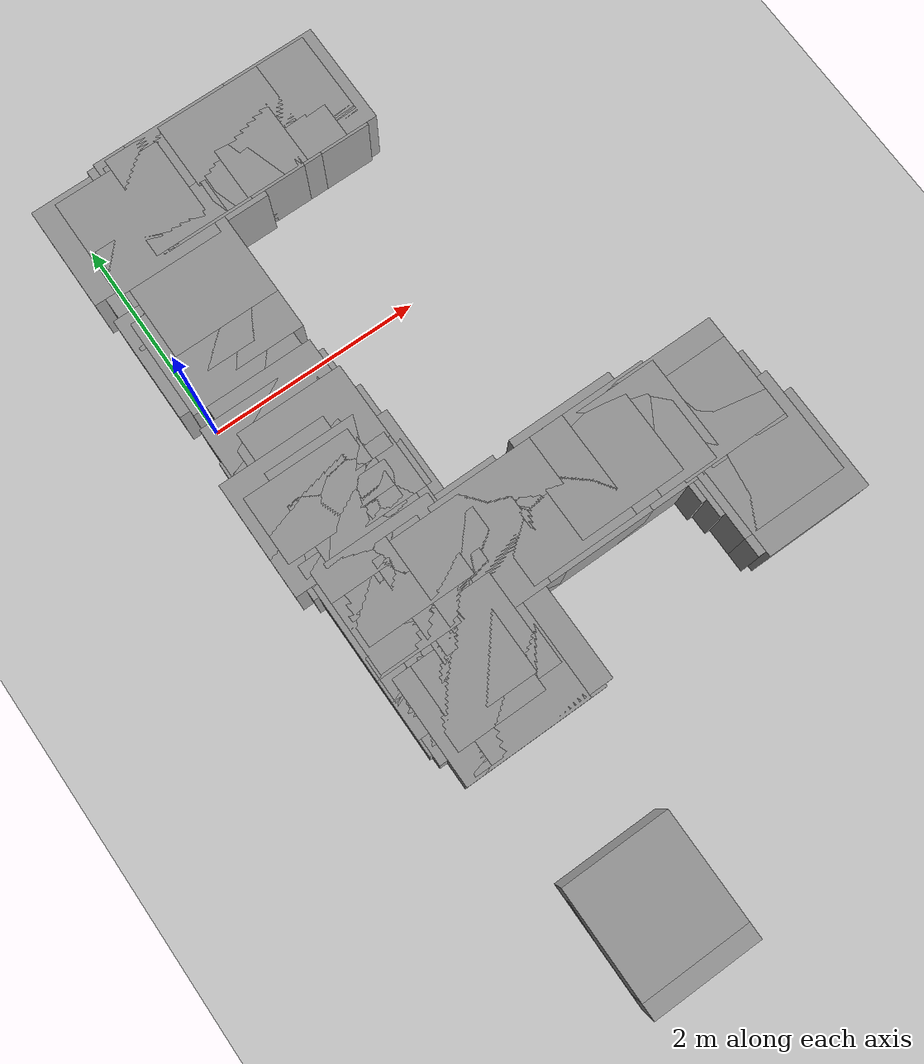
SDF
<sdf version="1.7">
 <world name="default">
  <model name="ground_plane">
   <static>1</static>
   <link name="link">
    <collision name="collision">
     <geometry><plane><normal>0 0 1</normal><size>100 100</size></plane></geometry>
     <surface>
      <contact><collide_bitmask>65535</collide_bitmask></contact>
      <friction><ode><mu>100</mu><mu2>50</mu2></ode></friction>
     </surface>
    </collision>
    <visual name="visual">
     <cast_shadows>0</cast_shadows>
     <geometry><plane><normal>0 0 1</normal><size>100 100</size></plane></geometry>
     <material>
      <script><uri>file://media/materials/scripts/gazebo.material</uri><name>Gazebo/Grey</name></script>
     </material>
    </visual>
   </link>
  </model>
  <include>
   <uri>model://unit_box</uri>
   <name>map_box_177</name>
   <pose>0.35719 1.22254 0.15000 0.00000 0.00000 0.00000</pose>
   <scale>0.05000 1.55000 0.30000</scale>
  </include>
  <include>
   <uri>model://unit_box</uri>
   <name>map_box_178</name>
   <pose>0.45719 1.72254 0.15000 0.00000 0.00000 0.00000</pose>
   <scale>0.05000 0.55000 0.30000</scale>
  </include>
  <include>
   <uri>model://unit_box</uri>
   <name>map_box_181</name>
   <pose>0.50719 1.17254 0.15000 0.00000 0.00000 0.00000</pose>
   <scale>0.05000 1.55000 0.30000</scale>
  </include>
  <include>
   <uri>model://unit_box</uri>
   <name>map_box_183</name>
   <pose>0.90719 1.84754 0.15000 0.00000 0.00000 0.00000</pose>
   <scale>0.05000 0.10000 0.30000</scale>
  </include>
  <include>
   <uri>model://unit_box</uri>
   <name>map_box_184</name>
   <pose>1.20719 1.84754 0.15000 0.00000 0.00000 0.00000</pose>
   <scale>0.25000 0.10000 0.30000</scale>
  </include>
  <include>
   <uri>model://unit_box</uri>
   <name>map_box_185</name>
   <pose>1.40719 1.84754 0.15000 0.00000 0.00000 0.00000</pose>
   <scale>0.05000 0.10000 0.30000</scale>
  </include>
  <include>
   <uri>model://unit_box</uri>
   <name>map_box_186</name>
   <pose>1.80719 1.84754 0.15000 0.00000 0.00000 0.00000</pose>
   <scale>0.35000 0.10000 0.30000</scale>
  </include>
  <include>
   <uri>model://unit_box</uri>
   <name>map_box_187</name>
   <pose>2.10719 1.84754 0.15000 0.00000 0.00000 0.00000</pose>
   <scale>0.15000 0.10000 0.30000</scale>
  </include>
  <include>
   <uri>model://unit_box</uri>
   <name>map_box_189</name>
   <pose>0.83219 1.82254 0.15000 0.00000 0.00000 0.00000</pose>
   <scale>0.10000 0.05000 0.30000</scale>
  </include>
  <include>
   <uri>model://unit_box</uri>
   <name>map_box_190</name>
   <pose>1.00719 1.82254 0.15000 0.00000 0.00000 0.00000</pose>
   <scale>0.15000 0.05000 0.30000</scale>
  </include>
  <include>
   <uri>model://unit_box</uri>
   <name>map_box_191</name>
   <pose>1.35719 1.82254 0.15000 0.00000 0.00000 0.00000</pose>
   <scale>0.05000 0.05000 0.30000</scale>
  </include>
  <include>
   <uri>model://unit_box</uri>
   <name>map_box_192</name>
   <pose>1.53219 1.82254 0.15000 0.00000 0.00000 0.00000</pose>
   <scale>0.20000 0.05000 0.30000</scale>
  </include>
  <include>
   <uri>model://unit_box</uri>
   <name>map_box_193</name>
   <pose>2.00719 1.82254 0.15000 0.00000 0.00000 0.00000</pose>
   <scale>0.05000 0.05000 0.30000</scale>
  </include>
  <include>
   <uri>model://unit_box</uri>
   <name>map_box_195</name>
   <pose>0.25719 1.77254 0.15000 0.00000 0.00000 0.00000</pose>
   <scale>0.05000 0.05000 0.30000</scale>
  </include>
  <include>
   <uri>model://unit_box</uri>
   <name>map_box_196</name>
   <pose>0.95719 1.77254 0.15000 0.00000 0.00000 0.00000</pose>
   <scale>0.05000 0.05000 0.30000</scale>
  </include>
  <include>
   <uri>model://unit_box</uri>
   <name>map_box_207</name>
   <pose>0.55719 1.02254 0.15000 0.00000 0.00000 0.00000</pose>
   <scale>0.05000 0.15000 0.30000</scale>
  </include>
  <include>
   <uri>model://unit_box</uri>
   <name>map_box_208</name>
   <pose>0.55719 0.77254 0.15000 0.00000 0.00000 0.00000</pose>
   <scale>0.05000 0.05000 0.30000</scale>
  </include>
  <include>
   <uri>model://unit_box</uri>
   <name>map_box_210</name>
   <pose>0.55719 0.64754 0.15000 0.00000 0.00000 0.00000</pose>
   <scale>0.05000 0.10000 0.30000</scale>
  </include>
  <include>
   <uri>model://unit_box</uri>
   <name>map_box_212</name>
   <pose>0.30719 0.57254 0.15000 0.00000 0.00000 0.00000</pose>
   <scale>0.05000 0.05000 0.30000</scale>
  </include>
  <include>
   <uri>model://unit_box</uri>
   <name>map_box_213</name>
   <pose>0.45719 0.52254 0.15000 0.00000 0.00000 0.00000</pose>
   <scale>0.05000 0.15000 0.30000</scale>
  </include>
  <include>
   <uri>model://unit_box</uri>
   <name>map_box_214</name>
   <pose>0.40719 0.52254 0.15000 0.00000 0.00000 0.00000</pose>
   <scale>0.05000 0.05000 0.30000</scale>
  </include>
  <include>
   <uri>model://unit_box</uri>
   <name>map_box_220</name>
   <pose>0.53219 -0.47746 0.15000 0.00000 0.00000 0.00000</pose>
   <scale>0.20000 0.05000 0.30000</scale>
  </include>
  <include>
   <uri>model://unit_box</uri>
   <name>map_box_221</name>
   <pose>0.58219 -0.60246 0.15000 0.00000 0.00000 0.00000</pose>
   <scale>0.10000 0.20000 0.30000</scale>
  </include>
  <include>
   <uri>model://unit_box</uri>
   <name>map_box_222</name>
   <pose>0.38219 -0.60246 0.15000 0.00000 0.00000 0.00000</pose>
   <scale>0.10000 0.10000 0.30000</scale>
  </include>
  <include>
   <uri>model://unit_box</uri>
   <name>map_box_223</name>
   <pose>0.65719 -1.02746 0.15000 0.00000 0.00000 0.00000</pose>
   <scale>0.05000 0.95000 0.30000</scale>
  </include>
  <include>
   <uri>model://unit_box</uri>
   <name>map_box_224</name>
   <pose>0.35719 -0.92746 0.15000 0.00000 0.00000 0.00000</pose>
   <scale>0.05000 0.55000 0.30000</scale>
  </include>
  <include>
   <uri>model://unit_box</uri>
   <name>map_box_225</name>
   <pose>0.60719 -0.80246 0.15000 0.00000 0.00000 0.00000</pose>
   <scale>0.05000 0.20000 0.30000</scale>
  </include>
  <include>
   <uri>model://unit_box</uri>
   <name>map_box_226</name>
   <pose>0.40719 -0.77746 0.15000 0.00000 0.00000 0.00000</pose>
   <scale>0.05000 0.05000 0.30000</scale>
  </include>
  <include>
   <uri>model://unit_box</uri>
   <name>map_box_227</name>
   <pose>0.40719 -0.87746 0.15000 0.00000 0.00000 0.00000</pose>
   <scale>0.05000 0.05000 0.30000</scale>
  </include>
  <include>
   <uri>model://unit_box</uri>
   <name>map_box_228</name>
   <pose>0.60719 -1.02746 0.15000 0.00000 0.00000 0.00000</pose>
   <scale>0.05000 0.15000 0.30000</scale>
  </include>
  <include>
   <uri>model://unit_box</uri>
   <name>map_box_229</name>
   <pose>0.25719 -1.07746 0.15000 0.00000 0.00000 0.00000</pose>
   <scale>0.05000 0.05000 0.30000</scale>
  </include>
  <include>
   <uri>model://unit_box</uri>
   <name>map_box_230</name>
   <pose>0.43219 -1.07746 0.15000 0.00000 0.00000 0.00000</pose>
   <scale>0.10000 0.05000 0.30000</scale>
  </include>
  <include>
   <uri>model://unit_box</uri>
   <name>map_box_232</name>
   <pose>0.40719 -1.37746 0.15000 0.00000 0.00000 0.00000</pose>
   <scale>0.05000 0.55000 0.30000</scale>
  </include>
  <include>
   <uri>model://unit_box</uri>
   <name>map_box_235</name>
   <pose>0.25719 -1.17746 0.15000 0.00000 0.00000 0.00000</pose>
   <scale>0.05000 0.05000 0.30000</scale>
  </include>
  <include>
   <uri>model://unit_box</uri>
   <name>map_box_236</name>
   <pose>0.60719 -1.20246 0.15000 0.00000 0.00000 0.00000</pose>
   <scale>0.05000 0.10000 0.30000</scale>
  </include>
  <include>
   <uri>model://unit_box</uri>
   <name>map_box_237</name>
   <pose>0.70719 -1.32746 0.15000 0.00000 0.00000 0.00000</pose>
   <scale>0.05000 0.25000 0.30000</scale>
  </include>
  <include>
   <uri>model://unit_box</uri>
   <name>map_box_238</name>
   <pose>0.35719 -1.27746 0.15000 0.00000 0.00000 0.00000</pose>
   <scale>0.05000 0.05000 0.30000</scale>
  </include>
  <include>
   <uri>model://unit_box</uri>
   <name>map_box_239</name>
   <pose>0.60719 -1.32746 0.15000 0.00000 0.00000 0.00000</pose>
   <scale>0.05000 0.05000 0.30000</scale>
  </include>
  <include>
   <uri>model://unit_box</uri>
   <name>map_box_240</name>
   <pose>0.45719 -1.37746 0.15000 0.00000 0.00000 0.00000</pose>
   <scale>0.05000 0.05000 0.30000</scale>
  </include>
  <include>
   <uri>model://unit_box</uri>
   <name>map_box_241</name>
   <pose>0.58219 -2.07746 0.15000 0.00000 0.00000 0.00000</pose>
   <scale>0.10000 1.35000 0.30000</scale>
  </include>
  <include>
   <uri>model://unit_box</uri>
   <name>map_box_242</name>
   <pose>0.45719 -1.65246 0.15000 0.00000 0.00000 0.00000</pose>
   <scale>0.05000 0.10000 0.30000</scale>
  </include>
  <include>
   <uri>model://unit_box</uri>
   <name>map_box_243</name>
   <pose>0.40719 -1.75246 0.15000 0.00000 0.00000 0.00000</pose>
   <scale>0.05000 0.10000 0.30000</scale>
  </include>
  <include>
   <uri>model://unit_box</uri>
   <name>map_box_244</name>
   <pose>0.50719 -1.72746 0.15000 0.00000 0.00000 0.00000</pose>
   <scale>0.05000 0.05000 0.30000</scale>
  </include>
  <include>
   <uri>model://unit_box</uri>
   <name>map_box_246</name>
   <pose>0.50719 -1.82746 0.15000 0.00000 0.00000 0.00000</pose>
   <scale>0.05000 0.05000 0.30000</scale>
  </include>
  <include>
   <uri>model://unit_box</uri>
   <name>map_box_247</name>
   <pose>0.40719 -1.87746 0.15000 0.00000 0.00000 0.00000</pose>
   <scale>0.05000 0.05000 0.30000</scale>
  </include>
  <include>
   <uri>model://unit_box</uri>
   <name>map_box_248</name>
   <pose>0.40719 -1.97746 0.15000 0.00000 0.00000 0.00000</pose>
   <scale>0.05000 0.05000 0.30000</scale>
  </include>
  <include>
   <uri>model://unit_box</uri>
   <name>map_box_251</name>
   <pose>0.45719 -2.05246 0.15000 0.00000 0.00000 0.00000</pose>
   <scale>0.05000 0.10000 0.30000</scale>
  </include>
  <include>
   <uri>model://unit_box</uri>
   <name>map_box_252</name>
   <pose>0.40719 -2.07746 0.15000 0.00000 0.00000 0.00000</pose>
   <scale>0.05000 0.05000 0.30000</scale>
  </include>
  <include>
   <uri>model://unit_box</uri>
   <name>map_box_253</name>
   <pose>2.35719 -2.10246 0.15000 0.00000 0.00000 0.00000</pose>
   <scale>1.95000 0.10000 0.30000</scale>
  </include>
  <include>
   <uri>model://unit_box</uri>
   <name>map_box_254</name>
   <pose>1.18219 -2.12746 0.15000 0.00000 0.00000 0.00000</pose>
   <scale>0.40000 0.05000 0.30000</scale>
  </include>
  <include>
   <uri>model://unit_box</uri>
   <name>map_box_255</name>
   <pose>3.35719 -2.57746 0.15000 0.00000 0.00000 0.00000</pose>
   <scale>0.05000 0.95000 0.30000</scale>
  </include>
  <include>
   <uri>model://unit_box</uri>
   <name>map_box_257</name>
   <pose>0.40719 -2.17746 0.15000 0.00000 0.00000 0.00000</pose>
   <scale>0.05000 0.05000 0.30000</scale>
  </include>
  <include>
   <uri>model://unit_box</uri>
   <name>map_box_258</name>
   <pose>1.10719 -2.17746 0.15000 0.00000 0.00000 0.00000</pose>
   <scale>0.35000 0.05000 0.30000</scale>
  </include>
  <include>
   <uri>model://unit_box</uri>
   <name>map_box_259</name>
   <pose>1.35719 -2.17746 0.15000 0.00000 0.00000 0.00000</pose>
   <scale>0.05000 0.05000 0.30000</scale>
  </include>
  <include>
   <uri>model://unit_box</uri>
   <name>map_box_260</name>
   <pose>1.50719 -2.17746 0.15000 0.00000 0.00000 0.00000</pose>
   <scale>0.05000 0.05000 0.30000</scale>
  </include>
  <include>
   <uri>model://unit_box</uri>
   <name>map_box_261</name>
   <pose>1.83219 -2.17746 0.15000 0.00000 0.00000 0.00000</pose>
   <scale>0.20000 0.05000 0.30000</scale>
  </include>
  <include>
   <uri>model://unit_box</uri>
   <name>map_box_262</name>
   <pose>2.08219 -2.17746 0.15000 0.00000 0.00000 0.00000</pose>
   <scale>0.20000 0.05000 0.30000</scale>
  </include>
  <include>
   <uri>model://unit_box</uri>
   <name>map_box_263</name>
   <pose>2.63219 -2.17746 0.15000 0.00000 0.00000 0.00000</pose>
   <scale>0.20000 0.05000 0.30000</scale>
  </include>
  <include>
   <uri>model://unit_box</uri>
   <name>map_box_264</name>
   <pose>3.30719 -2.20246 0.15000 0.00000 0.00000 0.00000</pose>
   <scale>0.05000 0.10000 0.30000</scale>
  </include>
  <include>
   <uri>model://unit_box</uri>
   <name>map_box_265</name>
   <pose>0.48219 -2.22746 0.15000 0.00000 0.00000 0.00000</pose>
   <scale>0.10000 0.05000 0.30000</scale>
  </include>
  <include>
   <uri>model://unit_box</uri>
   <name>map_box_266</name>
   <pose>0.95719 -2.22746 0.15000 0.00000 0.00000 0.00000</pose>
   <scale>0.05000 0.05000 0.30000</scale>
  </include>
  <include>
   <uri>model://unit_box</uri>
   <name>map_box_267</name>
   <pose>1.10719 -2.22746 0.15000 0.00000 0.00000 0.00000</pose>
   <scale>0.05000 0.05000 0.30000</scale>
  </include>
  <include>
   <uri>model://unit_box</uri>
   <name>map_box_268</name>
   <pose>1.95719 -2.22746 0.15000 0.00000 0.00000 0.00000</pose>
   <scale>0.15000 0.05000 0.30000</scale>
  </include>
  <include>
   <uri>model://unit_box</uri>
   <name>map_box_269</name>
   <pose>2.70719 -2.22746 0.15000 0.00000 0.00000 0.00000</pose>
   <scale>0.15000 0.05000 0.30000</scale>
  </include>
  <include>
   <uri>model://unit_box</uri>
   <name>map_box_272</name>
   <pose>0.40719 -2.27746 0.15000 0.00000 0.00000 0.00000</pose>
   <scale>0.05000 0.05000 0.30000</scale>
  </include>
  <include>
   <uri>model://unit_box</uri>
   <name>map_box_273</name>
   <pose>0.50719 -2.27746 0.15000 0.00000 0.00000 0.00000</pose>
   <scale>0.05000 0.05000 0.30000</scale>
  </include>
  <include>
   <uri>model://unit_box</uri>
   <name>map_box_274</name>
   <pose>0.90719 -2.27746 0.15000 0.00000 0.00000 0.00000</pose>
   <scale>0.05000 0.05000 0.30000</scale>
  </include>
  <include>
   <uri>model://unit_box</uri>
   <name>map_box_277</name>
   <pose>0.85719 -2.32746 0.15000 0.00000 0.00000 0.00000</pose>
   <scale>0.05000 0.05000 0.30000</scale>
  </include>
  <include>
   <uri>model://unit_box</uri>
   <name>map_box_278</name>
   <pose>3.30719 -2.40246 0.15000 0.00000 0.00000 0.00000</pose>
   <scale>0.05000 0.20000 0.30000</scale>
  </include>
  <include>
   <uri>model://unit_box</uri>
   <name>map_box_283</name>
   <pose>0.43219 -2.37746 0.15000 0.00000 0.00000 0.00000</pose>
   <scale>0.10000 0.05000 0.30000</scale>
  </include>
  <include>
   <uri>model://unit_box</uri>
   <name>map_box_284</name>
   <pose>0.80719 -2.37746 0.15000 0.00000 0.00000 0.00000</pose>
   <scale>0.05000 0.05000 0.30000</scale>
  </include>
  <include>
   <uri>model://unit_box</uri>
   <name>map_box_288</name>
   <pose>0.48219 -2.42746 0.15000 0.00000 0.00000 0.00000</pose>
   <scale>0.10000 0.05000 0.30000</scale>
  </include>
  <include>
   <uri>model://unit_box</uri>
   <name>map_box_290</name>
   <pose>0.40719 -2.47746 0.15000 0.00000 0.00000 0.00000</pose>
   <scale>0.05000 0.05000 0.30000</scale>
  </include>
  <include>
   <uri>model://unit_box</uri>
   <name>map_box_297</name>
   <pose>0.40719 -2.62746 0.15000 0.00000 0.00000 0.00000</pose>
   <scale>0.05000 0.05000 0.30000</scale>
  </include>
  <include>
   <uri>model://unit_box</uri>
   <name>map_box_298</name>
   <pose>0.65719 -2.67746 0.15000 0.00000 0.00000 0.00000</pose>
   <scale>0.05000 0.05000 0.30000</scale>
  </include>
  <include>
   <uri>model://unit_box</uri>
   <name>map_box_301</name>
   <pose>0.45719 -2.72746 0.15000 0.00000 0.00000 0.00000</pose>
   <scale>0.05000 0.05000 0.30000</scale>
  </include>
  <include>
   <uri>model://unit_box</uri>
   <name>map_box_304</name>
   <pose>0.40719 -2.77746 0.15000 0.00000 0.00000 0.00000</pose>
   <scale>0.05000 0.05000 0.30000</scale>
  </include>
  <include>
   <uri>model://unit_box</uri>
   <name>map_box_305</name>
   <pose>0.55719 -2.95246 0.15000 0.00000 0.00000 0.00000</pose>
   <scale>0.05000 0.40000 0.30000</scale>
  </include>
  <include>
   <uri>model://unit_box</uri>
   <name>map_box_306</name>
   <pose>0.65719 -2.77746 0.15000 0.00000 0.00000 0.00000</pose>
   <scale>0.05000 0.05000 0.30000</scale>
  </include>
  <include>
   <uri>model://unit_box</uri>
   <name>map_box_308</name>
   <pose>3.40719 -2.82746 0.15000 0.00000 0.00000 0.00000</pose>
   <scale>0.05000 0.05000 0.30000</scale>
  </include>
  <include>
   <uri>model://unit_box</uri>
   <name>map_box_311</name>
   <pose>0.43219 -2.87746 0.15000 0.00000 0.00000 0.00000</pose>
   <scale>0.10000 0.05000 0.30000</scale>
  </include>
  <include>
   <uri>model://unit_box</uri>
   <name>map_box_312</name>
   <pose>0.60719 -2.87746 0.15000 0.00000 0.00000 0.00000</pose>
   <scale>0.05000 0.05000 0.30000</scale>
  </include>
  <include>
   <uri>model://unit_box</uri>
   <name>map_box_316</name>
   <pose>3.40719 -3.00246 0.15000 0.00000 0.00000 0.00000</pose>
   <scale>0.05000 0.20000 0.30000</scale>
  </include>
  <include>
   <uri>model://unit_box</uri>
   <name>map_box_334</name>
   <pose>3.48219 -3.05246 0.15000 0.00000 0.00000 0.00000</pose>
   <scale>0.10000 0.10000 0.30000</scale>
  </include>
  <include>
   <uri>model://unit_box</uri>
   <name>map_box_341</name>
   <pose>0.60719 -3.10246 0.15000 0.00000 0.00000 0.00000</pose>
   <scale>0.05000 0.10000 0.30000</scale>
  </include>
  <include>
   <uri>model://unit_box</uri>
   <name>map_box_342</name>
   <pose>0.75719 -3.10246 0.15000 0.00000 0.00000 0.00000</pose>
   <scale>0.05000 0.10000 0.30000</scale>
  </include>
  <include>
   <uri>model://unit_box</uri>
   <name>map_box_343</name>
   <pose>0.90719 -3.10246 0.15000 0.00000 0.00000 0.00000</pose>
   <scale>0.05000 0.10000 0.30000</scale>
  </include>
  <include>
   <uri>model://unit_box</uri>
   <name>map_box_346</name>
   <pose>0.50719 -3.12746 0.15000 0.00000 0.00000 0.00000</pose>
   <scale>0.05000 0.05000 0.30000</scale>
  </include>
  <include>
   <uri>model://unit_box</uri>
   <name>map_box_347</name>
   <pose>0.68219 -3.12746 0.15000 0.00000 0.00000 0.00000</pose>
   <scale>0.10000 0.05000 0.30000</scale>
  </include>
  <include>
   <uri>model://unit_box</uri>
   <name>map_box_348</name>
   <pose>0.83219 -3.12746 0.15000 0.00000 0.00000 0.00000</pose>
   <scale>0.10000 0.05000 0.30000</scale>
  </include>
  <include>
   <uri>model://unit_box</uri>
   <name>map_box_349</name>
   <pose>0.65719 -5.12746 0.15000 0.00000 0.00000 0.00000</pose>
   <scale>0.05000 0.05000 0.30000</scale>
  </include>
  <include>
   <uri>model://unit_box</uri>
   <name>map_box_350</name>
   <pose>0.65719 -5.27746 0.15000 0.00000 0.00000 0.00000</pose>
   <scale>0.05000 0.05000 0.30000</scale>
  </include>
 </world>
</sdf>
